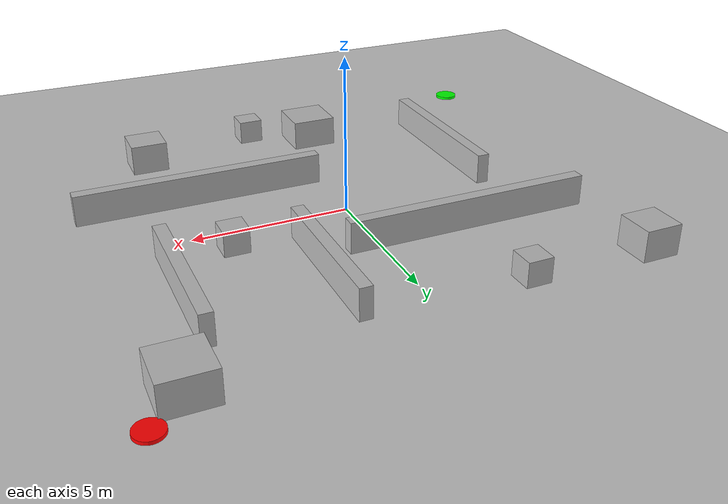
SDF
<?xml version="1.0" ?>
<sdf version="1.8">
  <world name="tfg_medium_world">

    <!-- Luz -->
    <light type="directional" name="sun">
      <pose>0 0 10 0 0 0</pose>
      <diffuse>0.8 0.8 0.8 1</diffuse>
      <specular>0.2 0.2 0.2 1</specular>
      <direction>-0.5 0.1 -0.9</direction>
    </light>

    <!-- Suelo -->
    <model name="ground_plane">
      <static>true</static>
      <link name="link">
        <collision name="collision">
          <geometry>
            <plane>
              <normal>0 0 1</normal>
              <size>24 24</size>
            </plane>
          </geometry>
        </collision>
        <visual name="visual">
          <geometry>
            <plane>
              <normal>0 0 1</normal>
              <size>24 24</size>
            </plane>
          </geometry>
          <material>
            <ambient>0.75 0.75 0.75 1</ambient>
            <diffuse>0.75 0.75 0.75 1</diffuse>
          </material>
        </visual>
      </link>
    </model>

    <!-- Pasillo horizontal central -->
    <model name="central_wall_1">
      <static>true</static>
      <pose>-3 2.5 0.5 0 0 0</pose>
      <link name="link">
        <collision name="collision">
          <geometry><box><size>8 0.4 1</size></box></geometry>
        </collision>
        <visual name="visual">
          <geometry><box><size>8 0.4 1</size></box></geometry>
        </visual>
      </link>
    </model>

    <model name="central_wall_2">
      <static>true</static>
      <pose>4 -2.5 0.5 0 0 0</pose>
      <link name="link">
        <collision name="collision">
          <geometry><box><size>8 0.4 1</size></box></geometry>
        </collision>
        <visual name="visual">
          <geometry><box><size>8 0.4 1</size></box></geometry>
        </visual>
      </link>
    </model>

    <!-- Paredes verticales internas -->
    <model name="vertical_wall_1">
      <static>true</static>
      <pose>-5 -3 0.5 0 0 0</pose>
      <link name="link">
        <collision name="collision">
          <geometry><box><size>0.4 6 1</size></box></geometry>
        </collision>
        <visual name="visual">
          <geometry><box><size>0.4 6 1</size></box></geometry>
        </visual>
      </link>
    </model>

    <model name="vertical_wall_2">
      <static>true</static>
      <pose>2 3.5 0.5 0 0 0</pose>
      <link name="link">
        <collision name="collision">
          <geometry><box><size>0.4 5 1</size></box></geometry>
        </collision>
        <visual name="visual">
          <geometry><box><size>0.4 5 1</size></box></geometry>
        </visual>
      </link>
    </model>

    <model name="vertical_wall_3">
      <static>true</static>
      <pose>6 3 0.5 0 0 0</pose>
      <link name="link">
        <collision name="collision">
          <geometry><box><size>0.4 5 1</size></box></geometry>
        </collision>
        <visual name="visual">
          <geometry><box><size>0.4 5 1</size></box></geometry>
        </visual>
      </link>
    </model>

    <!-- Obstáculos tipo caja -->
    <model name="box_obstacle_1">
      <static>true</static>
      <pose>-7 6 0.5 0 0 0</pose>
      <link name="link">
        <collision name="collision">
          <geometry><box><size>1.2 1.2 1</size></box></geometry>
        </collision>
        <visual name="visual">
          <geometry><box><size>1.2 1.2 1</size></box></geometry>
        </visual>
      </link>
    </model>

    <model name="box_obstacle_2">
      <static>true</static>
      <pose>-1 -6 0.5 0 0 0</pose>
      <link name="link">
        <collision name="collision">
          <geometry><box><size>1.5 1.5 1</size></box></geometry>
        </collision>
        <visual name="visual">
          <geometry><box><size>1.5 1.5 1</size></box></geometry>
        </visual>
      </link>
    </model>

    <model name="box_obstacle_3">
      <static>true</static>
      <pose>5 -6 0.5 0 0 0</pose>
      <link name="link">
        <collision name="collision">
          <geometry><box><size>1.2 1.2 1</size></box></geometry>
        </collision>
        <visual name="visual">
          <geometry><box><size>1.2 1.2 1</size></box></geometry>
        </visual>
      </link>
    </model>

    <model name="box_obstacle_4">
      <static>true</static>
      <pose>7 7 0.5 0 0 0</pose>
      <link name="link">
        <collision name="collision">
          <geometry><box><size>1.5 1.5 1</size></box></geometry>
        </collision>
        <visual name="visual">
          <geometry><box><size>1.5 1.5 1</size></box></geometry>
        </visual>
      </link>
    </model>

    <!-- Obstáculos pequeños para crear desvíos -->
    <model name="small_box_1">
      <static>true</static>
      <pose>-3 6 0.4 0 0 0</pose>
      <link name="link">
        <collision name="collision">
          <geometry><box><size>0.8 0.8 0.8</size></box></geometry>
        </collision>
        <visual name="visual">
          <geometry><box><size>0.8 0.8 0.8</size></box></geometry>
        </visual>
      </link>
    </model>

    <model name="small_box_2">
      <static>true</static>
      <pose>1 -7 0.4 0 0 0</pose>
      <link name="link">
        <collision name="collision">
          <geometry><box><size>0.8 0.8 0.8</size></box></geometry>
        </collision>
        <visual name="visual">
          <geometry><box><size>0.8 0.8 0.8</size></box></geometry>
        </visual>
      </link>
    </model>

    <model name="small_box_3">
      <static>true</static>
      <pose>4 1 0.4 0 0 0</pose>
      <link name="link">
        <collision name="collision">
          <geometry><box><size>0.8 0.8 0.8</size></box></geometry>
        </collision>
        <visual name="visual">
          <geometry><box><size>0.8 0.8 0.8</size></box></geometry>
        </visual>
      </link>
    </model>

    <!-- Marcadores visuales de inicio y objetivo -->
    <model name="start_marker">
      <static>true</static>
      <pose>-8 -8 0.05 0 0 0</pose>
      <link name="link">
        <visual name="visual">
          <geometry><cylinder><radius>0.4</radius><length>0.1</length></cylinder></geometry>
          <material>
            <ambient>0 1 0 1</ambient>
            <diffuse>0 1 0 1</diffuse>
          </material>
        </visual>
      </link>
    </model>

    <model name="goal_marker">
      <static>true</static>
      <pose>8 8 0.05 0 0 0</pose>
      <link name="link">
        <visual name="visual">
          <geometry><cylinder><radius>0.4</radius><length>0.1</length></cylinder></geometry>
          <material>
            <ambient>1 0 0 1</ambient>
            <diffuse>1 0 0 1</diffuse>
          </material>
        </visual>
      </link>
    </model>

  </world>
</sdf>
